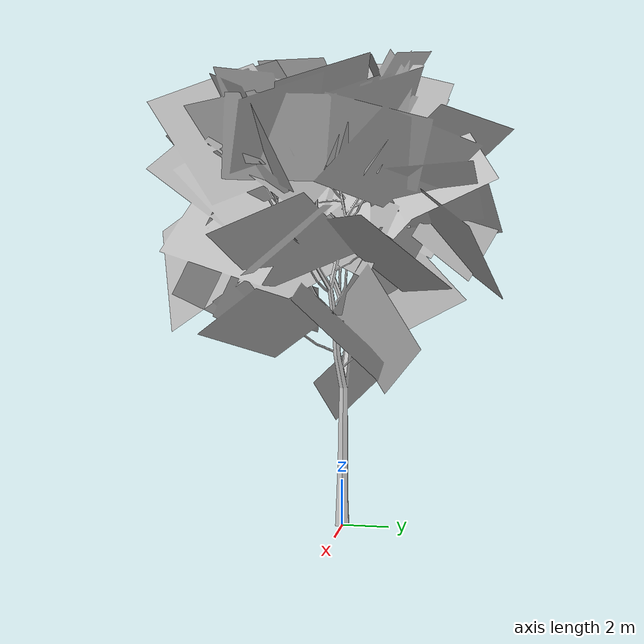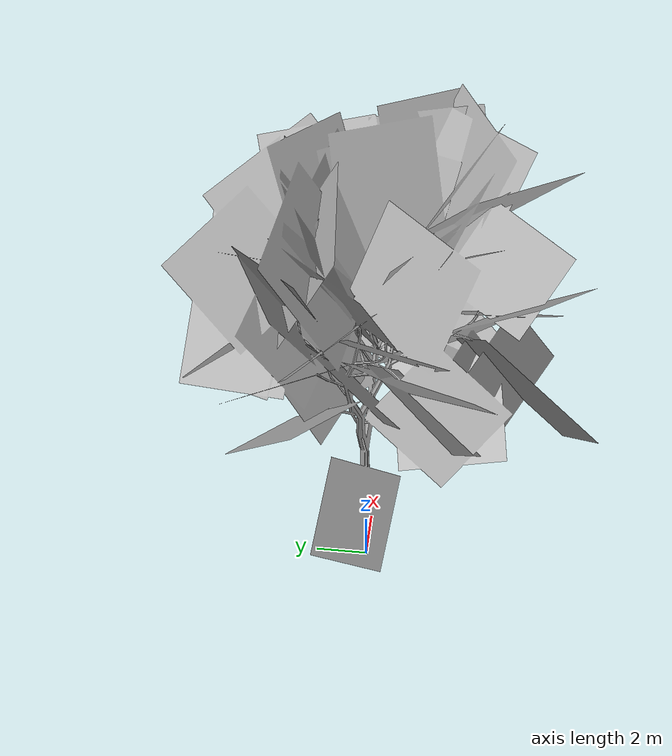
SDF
<?xml version='1.0'?>
<sdf version='1.4'>
	<model name="tree">
	  <static>true</static>
		<link name="tree_link">
			<visual name="leaves">
				<geometry>
					<mesh>
					  <uri>model://test_tree3/eucalyptus_v2.dae</uri>
					</mesh>
				</geometry>
				<material>
				  <script>
				    <uri>model://test_tree3/eucalyptus_v2.material</uri>
				    <name>eucalyptus_v2_mat</name>
				  </script>
				</material>
			</visual>
		</link>
	</model>
</sdf>
